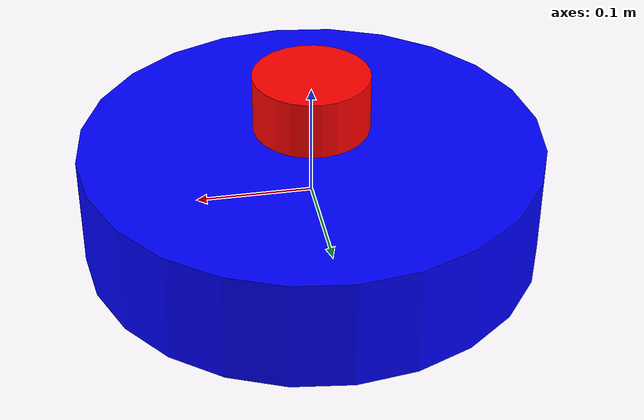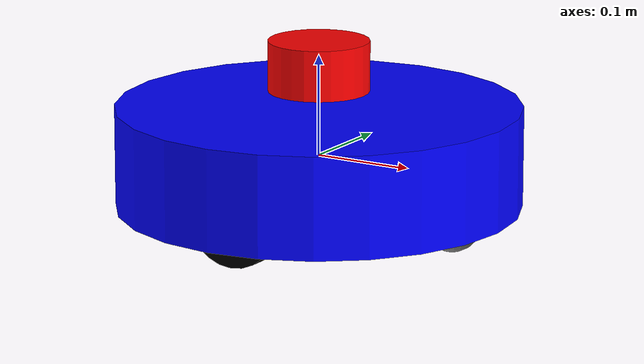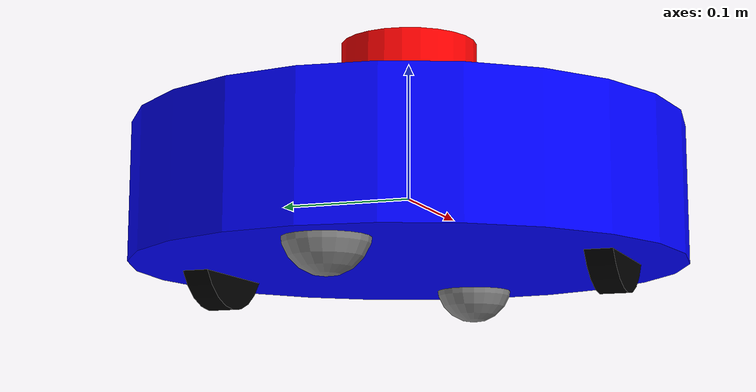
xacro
<?xml version="1.0"?>
<robot xmlns:xacro="http://www.ros.org/wiki/xacro" name="neos">

  <!-- Include sensor definitions -->
  <xacro:include filename="$(find neos_description)/urdf/neos_lidar.xacro"/>

  <!-- Parameters -->
  <xacro:property name="base_radius" value="0.2"/>
  <xacro:property name="base_length" value="0.1"/>
  <xacro:property name="wheel_radius" value="0.05"/>
  <xacro:property name="wheel_width" value="0.02"/>
  <xacro:property name="wheel_separation" value="0.3"/>
  <xacro:property name="caster_radius" value="0.03"/>
  <xacro:property name="base_mass" value="5"/>
  <xacro:property name="wheel_mass" value="0.5"/>
  <xacro:property name="caster_mass" value="0.1"/>

  <!-- Base Link -->
  <link name="base_link">
    <visual>
      <geometry>
        <cylinder length="${base_length}" radius="${base_radius}"/>
      </geometry>
      <material name="blue">
        <color rgba="0 0 1 1"/>
      </material>
    </visual>
    <collision>
      <geometry>
        <cylinder length="${base_length}" radius="${base_radius}"/>
      </geometry>
    </collision>
    <inertial>
      <mass value="${base_mass}"/>
      <inertia ixx="0.1" ixy="0" ixz="0" iyy="0.1" iyz="0" izz="0.1"/>
    </inertial>
  </link>

  <!-- Wheel Macro -->
  <xacro:macro name="wheel" params="name side">
    <link name="${name}">
      <visual>
        <geometry>
          <cylinder length="${wheel_width}" radius="${wheel_radius}"/>
        </geometry>
        <material name="black">
          <color rgba="0 0 0 1"/>
        </material>
      </visual>
      <collision>
        <geometry>
          <cylinder length="${wheel_width}" radius="${wheel_radius}"/>
        </geometry>
      </collision>
      <inertial>
        <mass value="${wheel_mass}"/>
        <inertia ixx="0.001" ixy="0" ixz="0" iyy="0.001" iyz="0" izz="0.001"/>
      </inertial>
    </link>

    <joint name="${name}_joint" type="continuous">
      <parent link="base_link"/>
      <child link="${name}"/>
      <origin xyz="0 ${side * wheel_separation/2} -${wheel_radius/2}" rpy="1.5708 0 0"/>
      <axis xyz="0 0 -1"/>
    </joint>
  </xacro:macro>

  <!-- Caster Macro -->
  <xacro:macro name="caster" params="name x_pos">
    <link name="${name}">
      <visual>
        <geometry>
          <sphere radius="${caster_radius}"/>
        </geometry>
        <material name="gray">
          <color rgba="0.5 0.5 0.5 1"/>
        </material>
      </visual>
      <collision>
        <geometry>
          <sphere radius="${caster_radius}"/>
        </geometry>
      </collision>
      <inertial>
        <mass value="${caster_mass}"/>
        <inertia ixx="0.0001" ixy="0" ixz="0" iyy="0.0001" iyz="0" izz="0.0001"/>
      </inertial>
    </link>

    <joint name="${name}_joint" type="fixed">
      <parent link="base_link"/>
      <child link="${name}"/>
      <origin xyz="${x_pos} 0 -0.04499" rpy="0 0 0"/>
    </joint>
  </xacro:macro>

  <!-- Create Wheels -->
  <xacro:wheel name="left_wheel" side="1"/>
  <xacro:wheel name="right_wheel" side="-1"/>

  <!-- Create Casters -->
  <xacro:caster name="front_caster" x_pos="0.15"/>
  <xacro:caster name="rear_caster" x_pos="-0.15"/>

  <!-- Add LiDAR Sensor (using default parameters) -->

  <!-- Alternative: Add LiDAR with custom parameters -->
  <xacro:neos_lidar parent_link="base_link" x="0" y="0" z="0.09"/>

</robot>

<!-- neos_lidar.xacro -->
<robot xmlns:xacro="http://www.ros.org/wiki/xacro" name="neos_lidar">

  <!-- Parameterized LiDAR Sensor Macro -->
  <xacro:macro name="neos_lidar" params="parent_link:=base_link x:=0 y:=0 z:=0.2 topic:=/scan update_rate:=30 min_range:=0.1 max_range:=7.0 samples:=720">

    <!-- LiDAR Link -->
    <link name="lidar_link">
      <visual>
        <geometry>
          <cylinder length="0.05" radius="0.05"/>
        </geometry>
        <material name="red">
          <color rgba="1 0 0 1"/>
        </material>
      </visual>
      <collision>
        <geometry>
          <cylinder length="0.05" radius="0.05"/>
        </geometry>
      </collision>
      <inertial>
        <origin xyz="0 0 0" rpy="0 0 0"/>
        <mass value="0.1"/>
        <inertia ixx="0.0001" ixy="0" ixz="0" iyy="0.0001" iyz="0" izz="0.0001"/>
      </inertial>
    </link>

    <!-- LiDAR Joint -->
    <joint name="lidar_joint" type="fixed">
      <parent link="${parent_link}"/>
      <child link="lidar_link"/>
      <origin xyz="${x} ${y} ${z}" rpy="0 0 0"/>
    </joint>

    <!-- Gazebo Sim LiDAR Sensor -->
    <gazebo reference="lidar_link">
      <sensor name="lidar_sensor" type="gpu_lidar">
        <pose>0 0 0 0 0 0</pose>
        <topic>${topic}</topic>
        <update_rate>${update_rate}</update_rate>
        <visualize>true</visualize>
        <ray>
          <scan>
            <horizontal>
              <samples>${samples}</samples>
              <resolution>1</resolution>
              <min_angle>-1.5708</min_angle>
              <max_angle>1.5708</max_angle>
            </horizontal>
            <vertical>
              <samples>1</samples>
              <resolution>0.01</resolution>
              <min_angle>0</min_angle>
              <max_angle>0</max_angle>
            </vertical>
          </scan>
          <range>
            <min>${min_range}</min>
            <max>${max_range}</max>
            <resolution>0.01</resolution>
          </range>
          <noise>
            <type>gaussian</type>
            <mean>0.0</mean>
            <stddev>0.01</stddev>
          </noise>
        </ray>
        <always_on>1</always_on>
      </sensor>
    </gazebo>

  </xacro:macro>

</robot>
